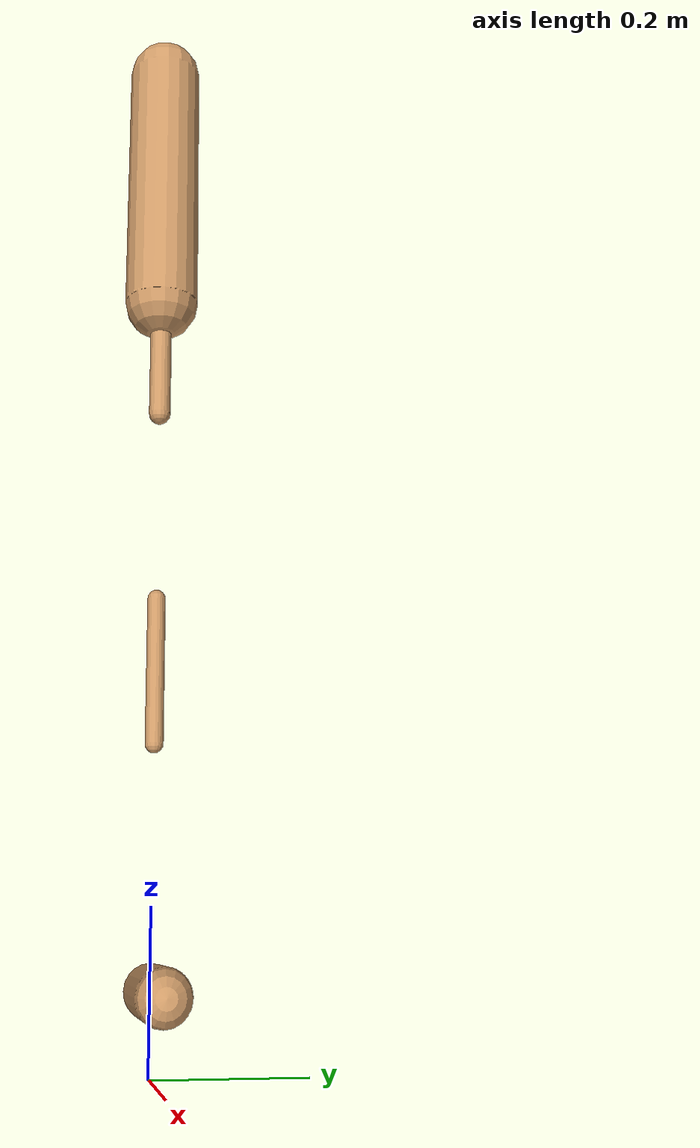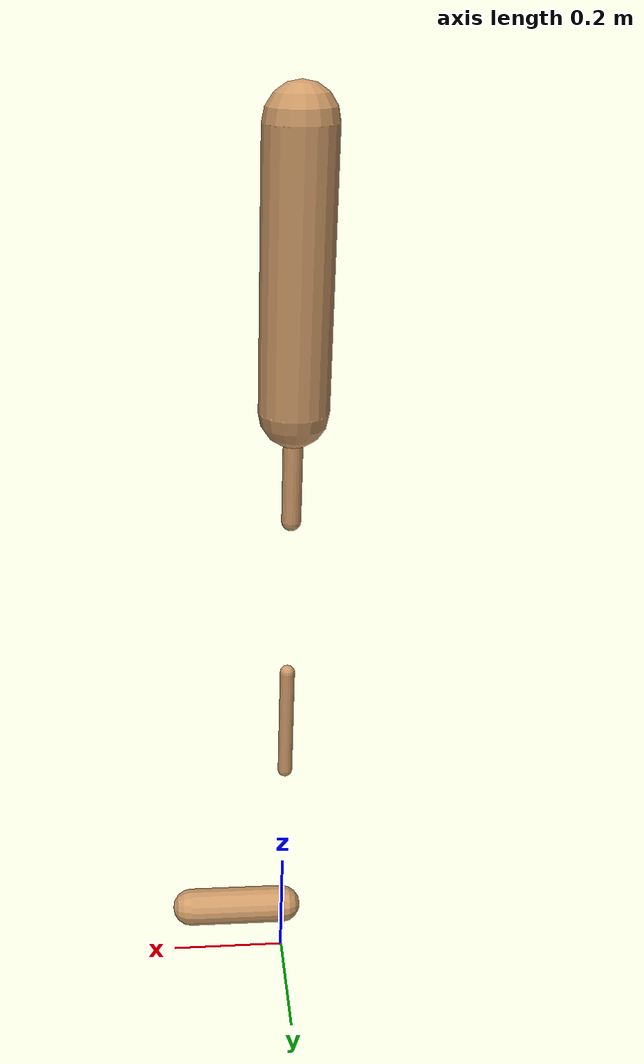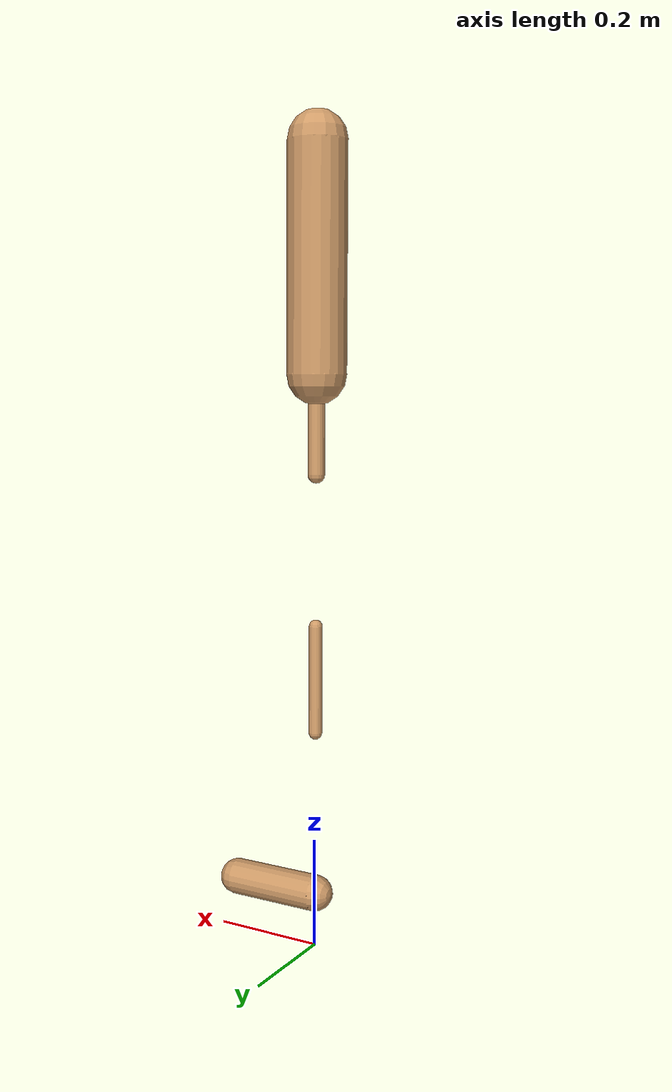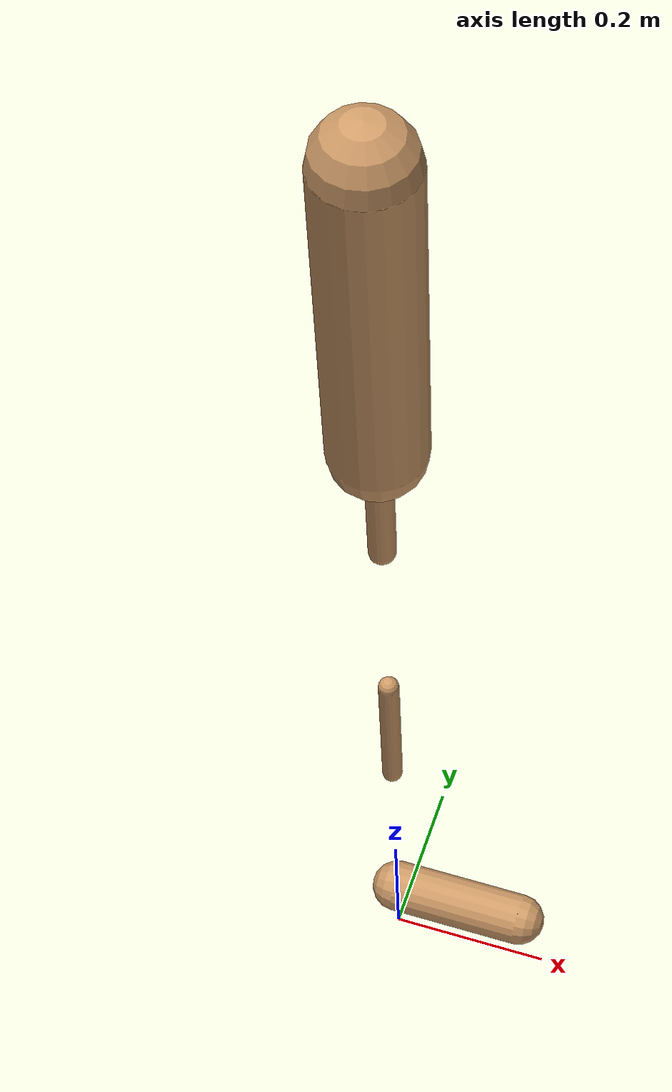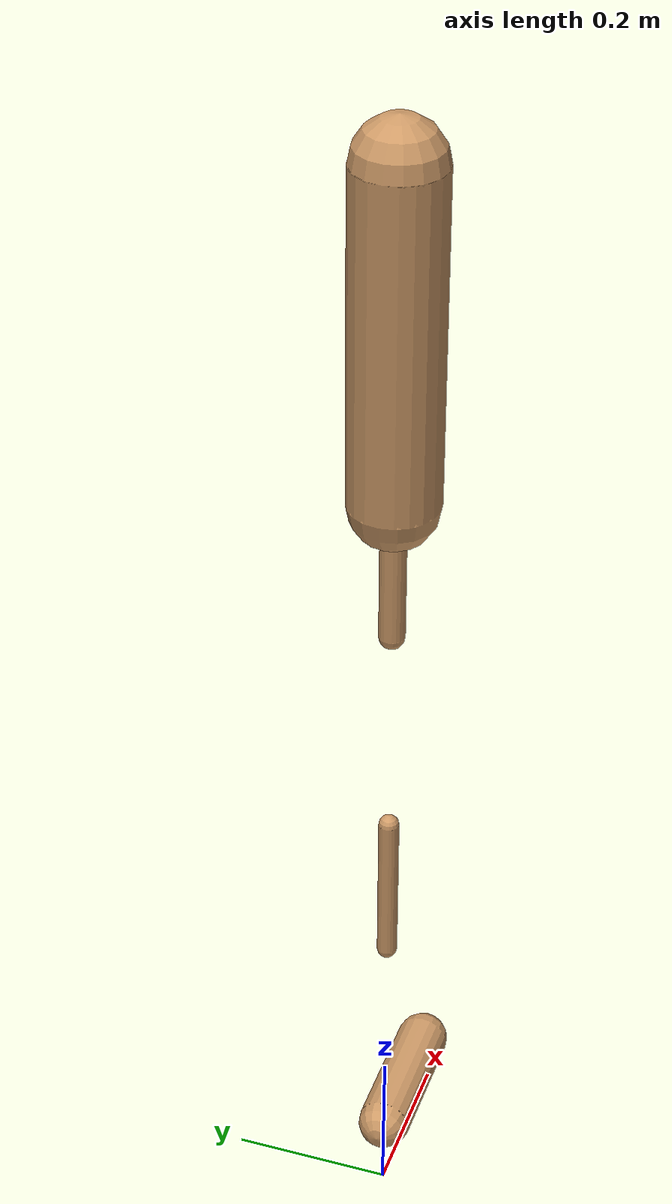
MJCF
<mujoco model="walker2d">
  <compiler angle="degree" coordinate="global" inertiafromgeom="true" />
  <default>
    <joint armature="0.01" damping=".1" limited="true" />
    <geom conaffinity="0" condim="3" contype="1" density="1000" friction="0.8 .1 .1" rgba="0.8 0.6 .4 1" />
  </default>
  <option integrator="RK4" timestep="0.002" />
  <worldbody>

    <body name="torso" pos="0 0 -0.5773699261775351">
      <joint armature="0" axis="1 0 0" damping="0" limited="false" name="ignorex" pos="0 0 0" stiffness="0" type="slide" />
      <joint armature="0" axis="0 0 1" damping="0" limited="false" name="ignorez" pos="0 0 0" ref="1.25" stiffness="0" type="slide" />
      <joint armature="0" axis="0 1 0" damping="0" limited="false" name="ignorey" pos="0 0 0" stiffness="0" type="hinge" />
      <geom fromto="0 0 1.45 0 0 1.05" name="torso_geom" size="0.05357233442936469" type="capsule" />
      <body name="thigh">
        <joint axis="0 -1 0" name="thigh_joint" pos="0 0 1.05" range="-150 0" type="hinge" />
        <geom fromto="0.0 0.0 1.05 0.0 0.0 0.873491017663043" name="thigh_geom" size="0.015376719522355187" type="capsule" />
        <body name="leg" pos="0.0 0.0 0.27349101766304307">
          <joint axis="0 -1 0" name="leg_joint" pos="0 0 0.6" range="-150 0" type="hinge" />
          <geom fromto="0.0 0.0 0.6 0.0 0.0 0.40387890851449215" name="leg_geom" size="0.01230137561788415" type="capsule" />
          <body name="foot" pos="0.0 0.0 0.3038789085144922">
            <joint axis="0 -1 0" name="foot_joint" pos="0 0 0.1" range="-45 45" type="hinge" />
            <geom fromto="0.0 0.0 0.1 0.1671382140963413 0.0 0.1" name="foot_geom" size="0.03321419898410383" type="capsule" />
          </body>
        </body>
      </body>

      <body name="thigh_left">
        <joint axis="0 -1 0" name="thigh_left_joint" pos="0 0 1.05" range="-150 0" type="hinge" />
        <geom fromto="0.0 0.0 1.05 0.0 0.0 0.873491017663043" name="thigh_left_geom" rgba=".7 .3 .6 1" size="0.015376719522355187" type="capsule" />
        <body name="leg_left" pos="0.0 0.0 0.27349101766304307">
          <joint axis="0 -1 0" name="leg_left_joint" pos="0 0 0.6" range="-150 0" type="hinge" />
          <geom fromto="0.0 0.0 0.6 0.0 0.0 0.40387890851449215" name="leg_left_geom" rgba=".7 .3 .6 1" size="0.01230137561788415" type="capsule" />
          <body name="foot_left" pos="0.0 0.0 0.3038789085144922">
            <joint axis="0 -1 0" name="foot_left_joint" pos="0 0 0.1" range="-45 45" type="hinge" />
            <geom fromto="0.0 0.0 0.1 0.1671382140963413 0.0 0.1" name="foot_left_geom" rgba=".7 .3 .6 1" size="0.03321419898410383" type="capsule" />
          </body>
        </body>
      </body>
    </body>
  </worldbody>
  <actuator>

    <motor ctrllimited="true" ctrlrange="-1.0 1.0" gear="100" joint="thigh_joint" />
    <motor ctrllimited="true" ctrlrange="-1.0 1.0" gear="100" joint="leg_joint" />
    <motor ctrllimited="true" ctrlrange="-1.0 1.0" gear="100" joint="foot_joint" />
    <motor ctrllimited="true" ctrlrange="-1.0 1.0" gear="100" joint="thigh_left_joint" />
    <motor ctrllimited="true" ctrlrange="-1.0 1.0" gear="100" joint="leg_left_joint" />
    <motor ctrllimited="true" ctrlrange="-1.0 1.0" gear="100" joint="foot_left_joint" />

  </actuator>
</mujoco>
